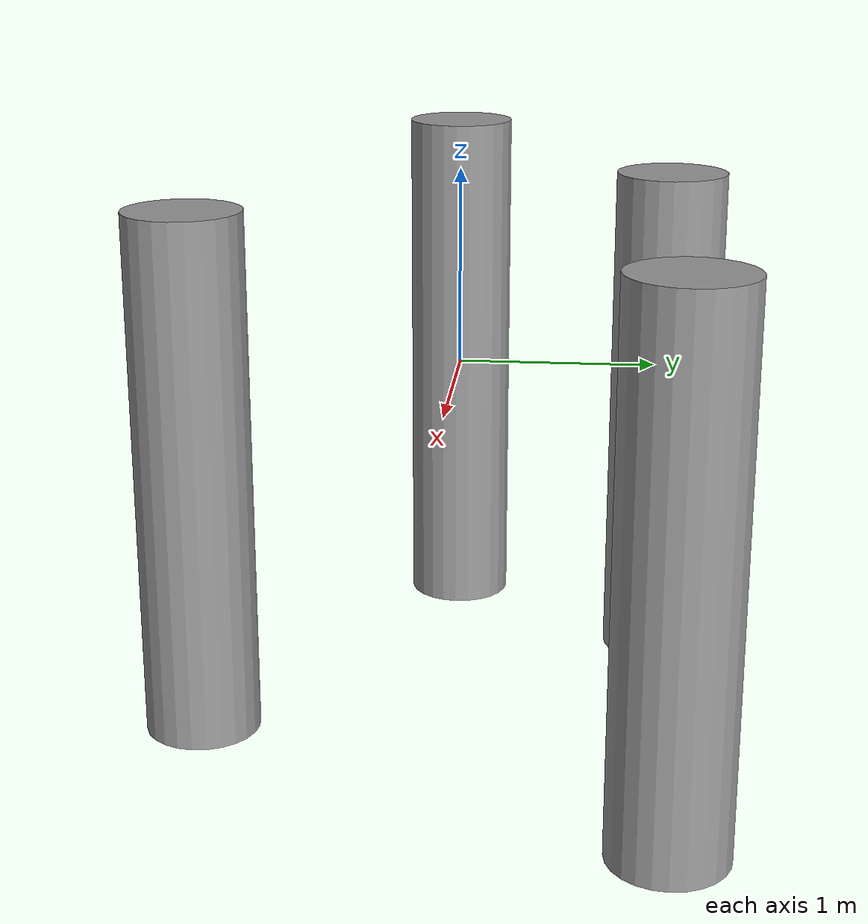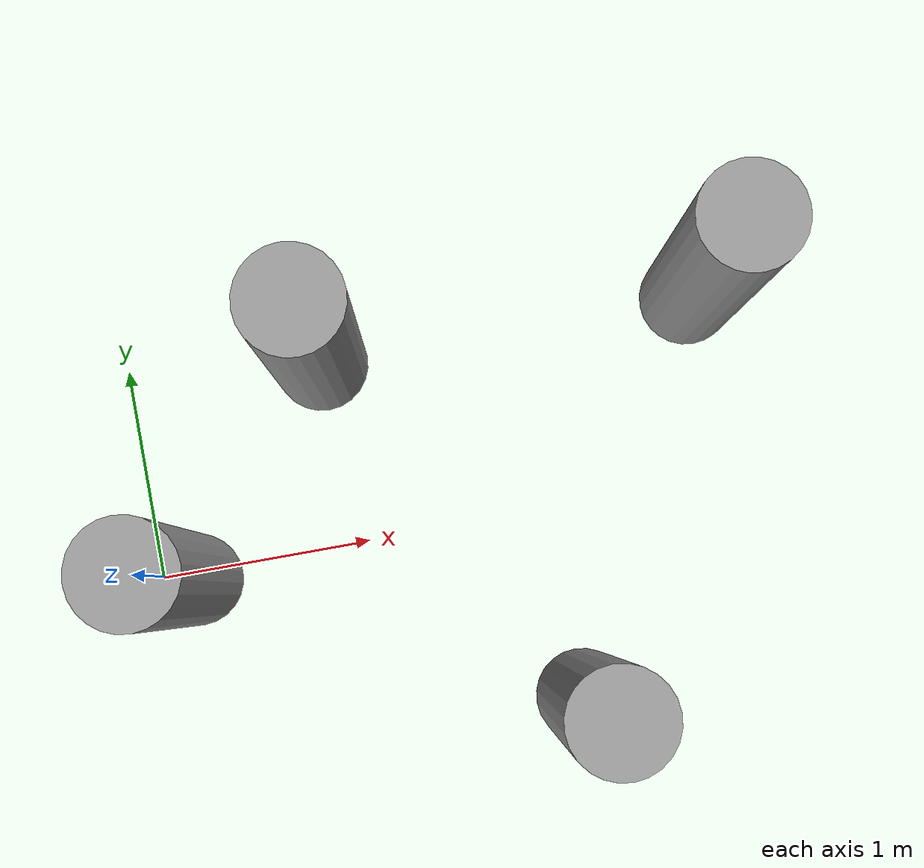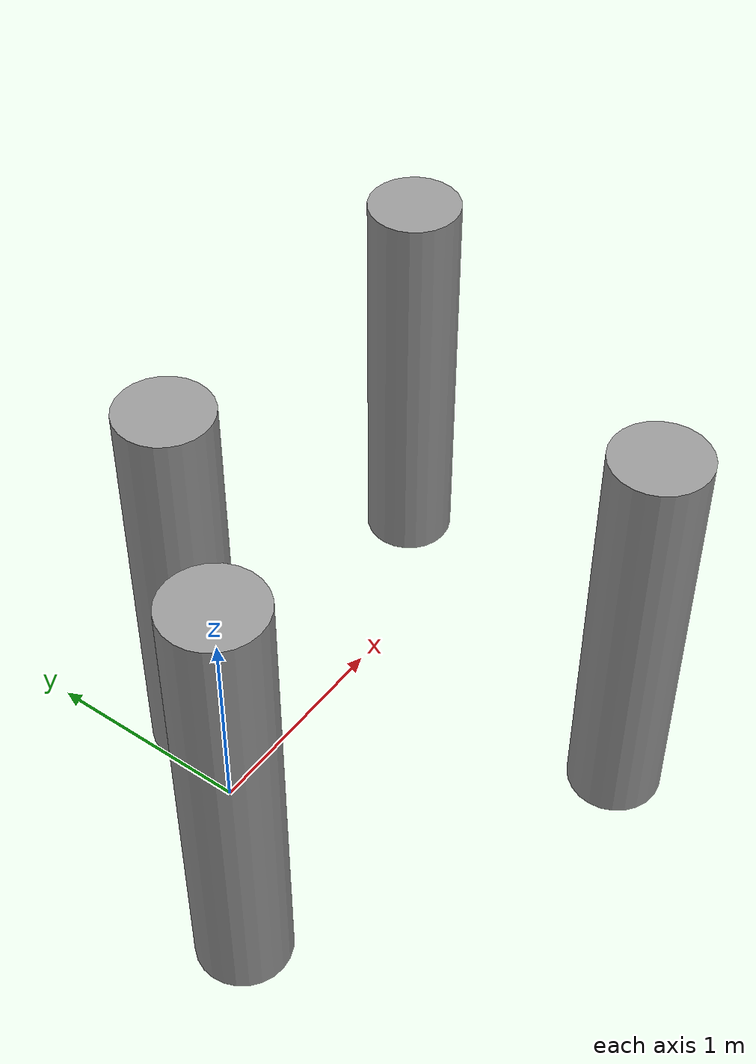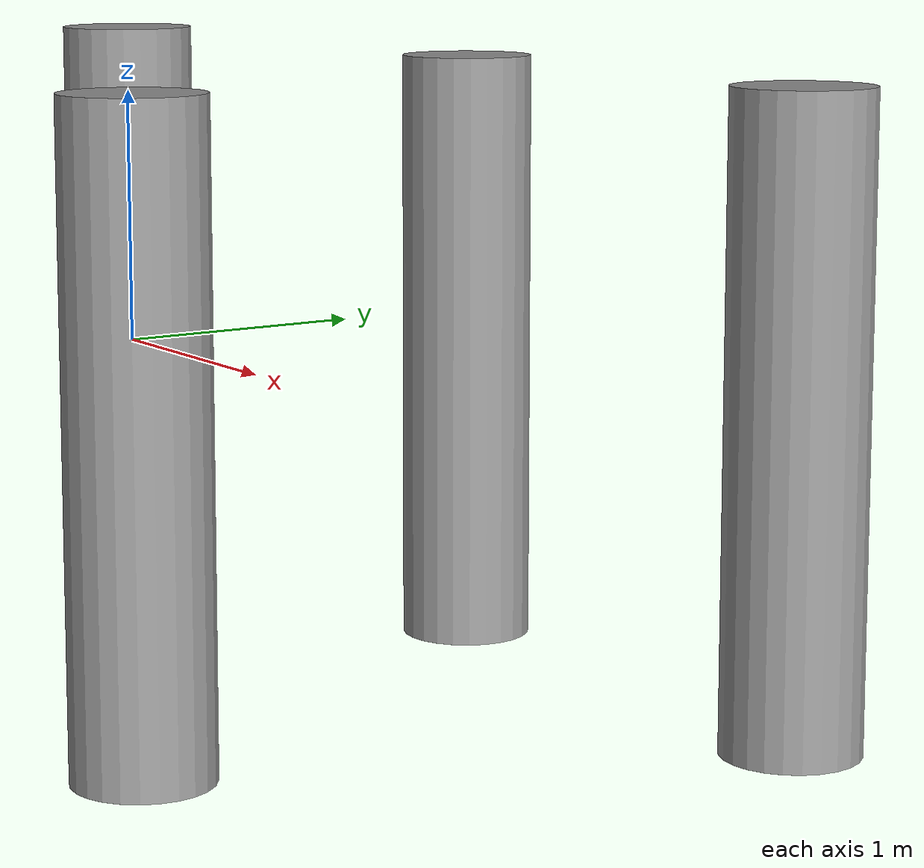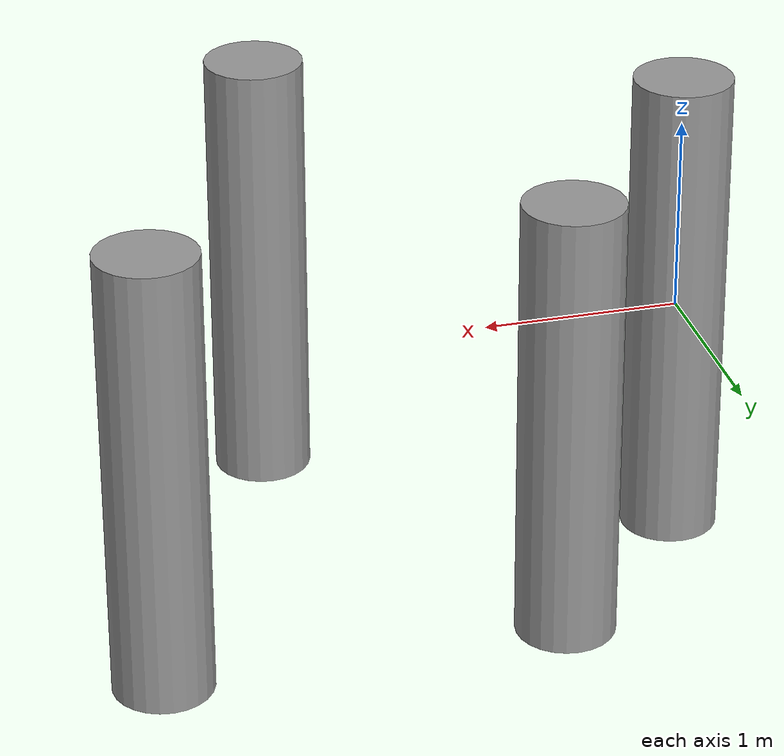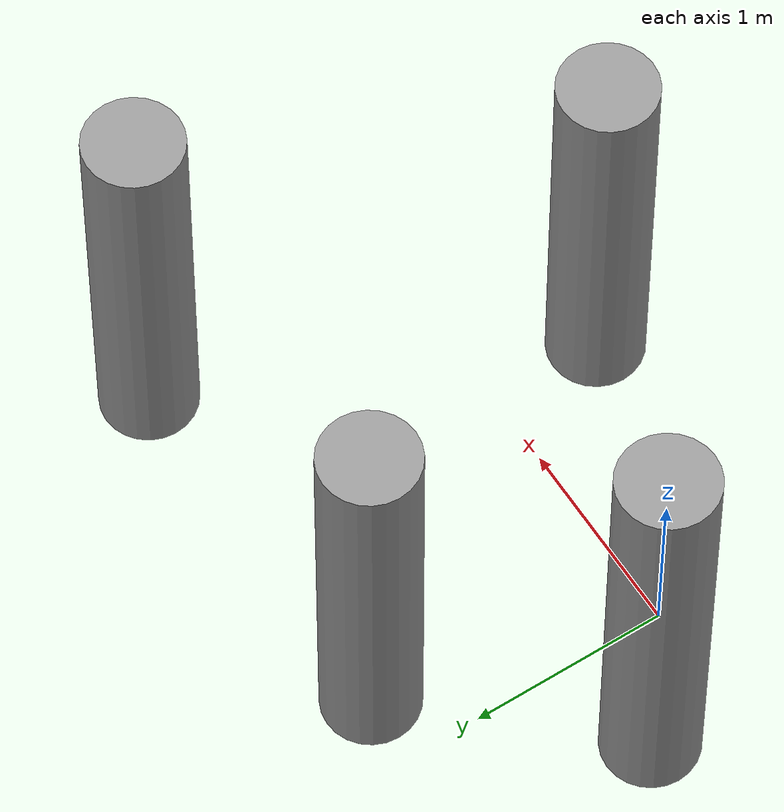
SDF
<?xml version='1.0'?>
<sdf version='1.6'>
  <model name='prueba'>
    <model name='prueba'>
      <link name='link'>
        <inertial>
          <mass>1</mass>
          <inertia>
            <ixx>0.145833</ixx>
            <ixy>0</ixy>
            <ixz>0</ixz>
            <iyy>0.145833</iyy>
            <iyz>0</iyz>
            <izz>0.125</izz>
          </inertia>
          <pose frame=''>0 0 0 0 -0 0</pose>
        </inertial>
        <self_collide>0</self_collide>
        <enable_wind>0</enable_wind>
        <kinematic>0</kinematic>
        <pose frame=''>0 0 0 0 0 -0.001229</pose>
        <gravity>1</gravity>
        <visual name='visual'>
          <geometry>
            <cylinder>
              <radius>0.25</radius>
              <length>2.5</length>
            </cylinder>
          </geometry>
          <material>
            <script>
              <name>Gazebo/Grey</name>
              <uri>file://media/materials/scripts/gazebo.material</uri>
            </script>
            <shader type='vertex'>
              <normal_map>__default__</normal_map>
            </shader>
            <ambient>0.3 0.3 0.3 1</ambient>
            <diffuse>0.7 0.7 0.7 1</diffuse>
            <specular>0.01 0.01 0.01 1</specular>
            <emissive>0 0 0 1</emissive>
          </material>
          <pose frame=''>0 0 0 0 -0 0</pose>
          <transparency>0</transparency>
          <cast_shadows>1</cast_shadows>
        </visual>
        <collision name='collision'>
          <laser_retro>0</laser_retro>
          <max_contacts>10</max_contacts>
          <pose frame=''>0 0 0 0 -0 0</pose>
          <geometry>
            <cylinder>
              <radius>0.25</radius>
              <length>2.5</length>
            </cylinder>
          </geometry>
          <surface>
            <friction>
              <ode>
                <mu>1</mu>
                <mu2>1</mu2>
                <fdir1>0 0 0</fdir1>
                <slip1>0</slip1>
                <slip2>0</slip2>
              </ode>
              <torsional>
                <coefficient>1</coefficient>
                <patch_radius>0</patch_radius>
                <surface_radius>0</surface_radius>
                <use_patch_radius>1</use_patch_radius>
                <ode>
                  <slip>0</slip>
                </ode>
              </torsional>
            </friction>
            <bounce>
              <restitution_coefficient>0</restitution_coefficient>
              <threshold>1e+06</threshold>
            </bounce>
            <contact>
              <collide_without_contact>0</collide_without_contact>
              <collide_without_contact_bitmask>1</collide_without_contact_bitmask>
              <collide_bitmask>1</collide_bitmask>
              <ode>
                <soft_cfm>0</soft_cfm>
                <soft_erp>0.2</soft_erp>
                <kp>1e+13</kp>
                <kd>1</kd>
                <max_vel>0.01</max_vel>
                <min_depth>0</min_depth>
              </ode>
              <bullet>
                <split_impulse>1</split_impulse>
                <split_impulse_penetration_threshold>-0.01</split_impulse_penetration_threshold>
                <soft_cfm>0</soft_cfm>
                <soft_erp>0.2</soft_erp>
                <kp>1e+13</kp>
                <kd>1</kd>
              </bullet>
            </contact>
          </surface>
        </collision>
      </link>
      <model name='columna'>
        <link name='link'>
          <inertial>
            <mass>1</mass>
            <inertia>
              <ixx>0.145833</ixx>
              <ixy>0</ixy>
              <ixz>0</ixz>
              <iyy>0.145833</iyy>
              <iyz>0</iyz>
              <izz>0.125</izz>
            </inertia>
            <pose frame=''>0 0 0 0 -0 0</pose>
          </inertial>
          <self_collide>0</self_collide>
          <enable_wind>0</enable_wind>
          <kinematic>0</kinematic>
          <pose frame=''>0 0 0 0 -0 0</pose>
          <gravity>1</gravity>
          <visual name='visual'>
            <geometry>
              <cylinder>
                <radius>0.25</radius>
                <length>2.3</length>
              </cylinder>
            </geometry>
            <material>
              <script>
                <name>Gazebo/Grey</name>
                <uri>file://media/materials/scripts/gazebo.material</uri>
              </script>
              <shader type='vertex'>
                <normal_map>__default__</normal_map>
              </shader>
              <ambient>0.3 0.3 0.3 1</ambient>
              <diffuse>0.7 0.7 0.7 1</diffuse>
              <specular>0.01 0.01 0.01 1</specular>
              <emissive>0 0 0 1</emissive>
            </material>
            <pose frame=''>0 0 0 0 -0 0</pose>
            <transparency>0</transparency>
            <cast_shadows>1</cast_shadows>
          </visual>
          <collision name='collision'>
            <laser_retro>0</laser_retro>
            <max_contacts>10</max_contacts>
            <pose frame=''>0 0 0 0 -0 0</pose>
            <geometry>
              <cylinder>
                <radius>0.25</radius>
                <length>2.3</length>
              </cylinder>
            </geometry>
            <surface>
              <friction>
                <ode>
                  <mu>1</mu>
                  <mu2>1</mu2>
                  <fdir1>0 0 0</fdir1>
                  <slip1>0</slip1>
                  <slip2>0</slip2>
                </ode>
                <torsional>
                  <coefficient>1</coefficient>
                  <patch_radius>0</patch_radius>
                  <surface_radius>0</surface_radius>
                  <use_patch_radius>1</use_patch_radius>
                  <ode>
                    <slip>0</slip>
                  </ode>
                </torsional>
              </friction>
              <bounce>
                <restitution_coefficient>0</restitution_coefficient>
                <threshold>1e+06</threshold>
              </bounce>
              <contact>
                <collide_without_contact>0</collide_without_contact>
                <collide_without_contact_bitmask>1</collide_without_contact_bitmask>
                <collide_bitmask>1</collide_bitmask>
                <ode>
                  <soft_cfm>0</soft_cfm>
                  <soft_erp>0.2</soft_erp>
                  <kp>1e+13</kp>
                  <kd>1</kd>
                  <max_vel>0.01</max_vel>
                  <min_depth>0</min_depth>
                </ode>
                <bullet>
                  <split_impulse>1</split_impulse>
                  <split_impulse_penetration_threshold>-0.01</split_impulse_penetration_threshold>
                  <soft_cfm>0</soft_cfm>
                  <soft_erp>0.2</soft_erp>
                  <kp>1e+13</kp>
                  <kd>1</kd>
                </bullet>
              </contact>
            </surface>
          </collision>
        </link>
        <static>0</static>
        <allow_auto_disable>1</allow_auto_disable>
        <pose frame=''>0.87409 1.02632 0 0 -0 0</pose>
      </model>
      <model name='columna_0'>
        <link name='link'>
          <inertial>
            <mass>1</mass>
            <inertia>
              <ixx>0.145833</ixx>
              <ixy>0</ixy>
              <ixz>0</ixz>
              <iyy>0.145833</iyy>
              <iyz>0</iyz>
              <izz>0.125</izz>
            </inertia>
            <pose frame=''>0 0 0 0 -0 0</pose>
          </inertial>
          <self_collide>0</self_collide>
          <enable_wind>0</enable_wind>
          <kinematic>0</kinematic>
          <pose frame=''>0 0 0 0 -0 0</pose>
          <gravity>1</gravity>
          <visual name='visual'>
            <geometry>
              <cylinder>
                <radius>0.25</radius>
                <length>2.3</length>
              </cylinder>
            </geometry>
            <material>
              <script>
                <name>Gazebo/Grey</name>
                <uri>file://media/materials/scripts/gazebo.material</uri>
              </script>
              <shader type='vertex'>
                <normal_map>__default__</normal_map>
              </shader>
              <ambient>0.3 0.3 0.3 1</ambient>
              <diffuse>0.7 0.7 0.7 1</diffuse>
              <specular>0.01 0.01 0.01 1</specular>
              <emissive>0 0 0 1</emissive>
            </material>
            <pose frame=''>0 0 0 0 -0 0</pose>
            <transparency>0</transparency>
            <cast_shadows>1</cast_shadows>
          </visual>
          <collision name='collision'>
            <laser_retro>0</laser_retro>
            <max_contacts>10</max_contacts>
            <pose frame=''>0 0 0 0 -0 0</pose>
            <geometry>
              <cylinder>
                <radius>0.25</radius>
                <length>2.3</length>
              </cylinder>
            </geometry>
            <surface>
              <friction>
                <ode>
                  <mu>1</mu>
                  <mu2>1</mu2>
                  <fdir1>0 0 0</fdir1>
                  <slip1>0</slip1>
                  <slip2>0</slip2>
                </ode>
                <torsional>
                  <coefficient>1</coefficient>
                  <patch_radius>0</patch_radius>
                  <surface_radius>0</surface_radius>
                  <use_patch_radius>1</use_patch_radius>
                  <ode>
                    <slip>0</slip>
                  </ode>
                </torsional>
              </friction>
              <bounce>
                <restitution_coefficient>0</restitution_coefficient>
                <threshold>1e+06</threshold>
              </bounce>
              <contact>
                <collide_without_contact>0</collide_without_contact>
                <collide_without_contact_bitmask>1</collide_without_contact_bitmask>
                <collide_bitmask>1</collide_bitmask>
                <ode>
                  <soft_cfm>0</soft_cfm>
                  <soft_erp>0.2</soft_erp>
                  <kp>1e+13</kp>
                  <kd>1</kd>
                  <max_vel>0.01</max_vel>
                  <min_depth>0</min_depth>
                </ode>
                <bullet>
                  <split_impulse>1</split_impulse>
                  <split_impulse_penetration_threshold>-0.01</split_impulse_penetration_threshold>
                  <soft_cfm>0</soft_cfm>
                  <soft_erp>0.2</soft_erp>
                  <kp>1e+13</kp>
                  <kd>1</kd>
                </bullet>
              </contact>
            </surface>
          </collision>
        </link>
        <static>0</static>
        <allow_auto_disable>1</allow_auto_disable>
        <pose frame=''>1.94536 -0.979123 0 0 -0 0</pose>
      </model>
      <model name='columna_1'>
        <link name='link'>
          <inertial>
            <mass>1</mass>
            <inertia>
              <ixx>0.145833</ixx>
              <ixy>0</ixy>
              <ixz>0</ixz>
              <iyy>0.145833</iyy>
              <iyz>0</iyz>
              <izz>0.125</izz>
            </inertia>
            <pose frame=''>0 0 0 0 -0 0</pose>
          </inertial>
          <self_collide>0</self_collide>
          <enable_wind>0</enable_wind>
          <kinematic>0</kinematic>
          <pose frame=''>0 0 0 0 -0 0</pose>
          <gravity>1</gravity>
          <visual name='visual'>
            <geometry>
              <cylinder>
                <radius>0.25</radius>
                <length>2.3</length>
              </cylinder>
            </geometry>
            <material>
              <script>
                <name>Gazebo/Grey</name>
                <uri>file://media/materials/scripts/gazebo.material</uri>
              </script>
              <shader type='vertex'>
                <normal_map>__default__</normal_map>
              </shader>
              <ambient>0.3 0.3 0.3 1</ambient>
              <diffuse>0.7 0.7 0.7 1</diffuse>
              <specular>0.01 0.01 0.01 1</specular>
              <emissive>0 0 0 1</emissive>
            </material>
            <pose frame=''>0 0 0 0 -0 0</pose>
            <transparency>0</transparency>
            <cast_shadows>1</cast_shadows>
          </visual>
          <collision name='collision'>
            <laser_retro>0</laser_retro>
            <max_contacts>10</max_contacts>
            <pose frame=''>0 0 0 0 -0 0</pose>
            <geometry>
              <cylinder>
                <radius>0.25</radius>
                <length>2.3</length>
              </cylinder>
            </geometry>
            <surface>
              <friction>
                <ode>
                  <mu>1</mu>
                  <mu2>1</mu2>
                  <fdir1>0 0 0</fdir1>
                  <slip1>0</slip1>
                  <slip2>0</slip2>
                </ode>
                <torsional>
                  <coefficient>1</coefficient>
                  <patch_radius>0</patch_radius>
                  <surface_radius>0</surface_radius>
                  <use_patch_radius>1</use_patch_radius>
                  <ode>
                    <slip>0</slip>
                  </ode>
                </torsional>
              </friction>
              <bounce>
                <restitution_coefficient>0</restitution_coefficient>
                <threshold>1e+06</threshold>
              </bounce>
              <contact>
                <collide_without_contact>0</collide_without_contact>
                <collide_without_contact_bitmask>1</collide_without_contact_bitmask>
                <collide_bitmask>1</collide_bitmask>
                <ode>
                  <soft_cfm>0</soft_cfm>
                  <soft_erp>0.2</soft_erp>
                  <kp>1e+13</kp>
                  <kd>1</kd>
                  <max_vel>0.01</max_vel>
                  <min_depth>0</min_depth>
                </ode>
                <bullet>
                  <split_impulse>1</split_impulse>
                  <split_impulse_penetration_threshold>-0.01</split_impulse_penetration_threshold>
                  <soft_cfm>0</soft_cfm>
                  <soft_erp>0.2</soft_erp>
                  <kp>1e+13</kp>
                  <kd>1</kd>
                </bullet>
              </contact>
            </surface>
          </collision>
        </link>
        <static>0</static>
        <allow_auto_disable>1</allow_auto_disable>
        <pose frame=''>2.8812 1.03393 0 0 -0 0</pose>
      </model>
      <static>0</static>
      <allow_auto_disable>1</allow_auto_disable>
      <pose frame=''>2e-06 -3e-06 0 0 -0 0</pose>
    </model>
    <static>0</static>
    <allow_auto_disable>1</allow_auto_disable>
  </model>
</sdf>
